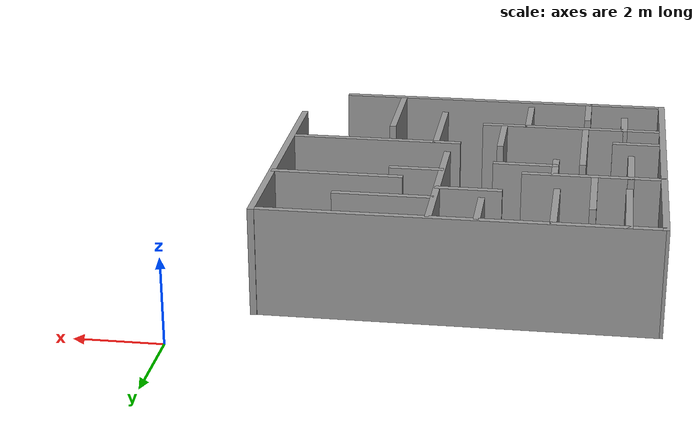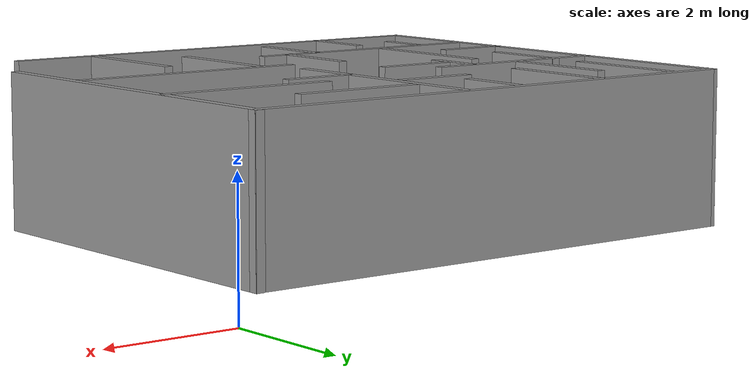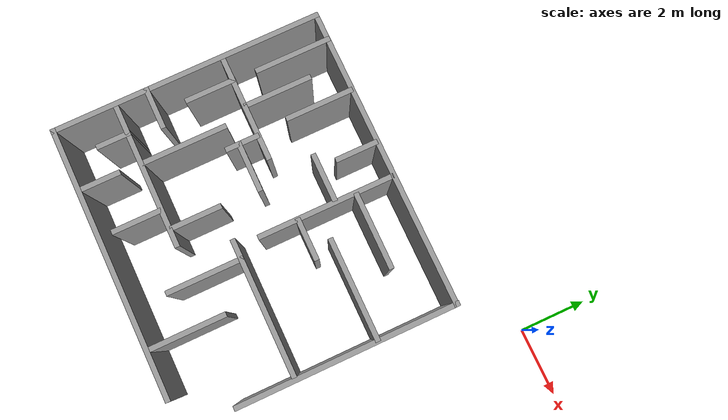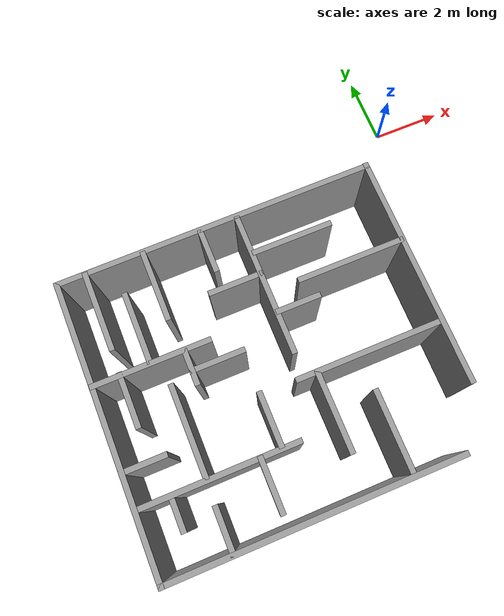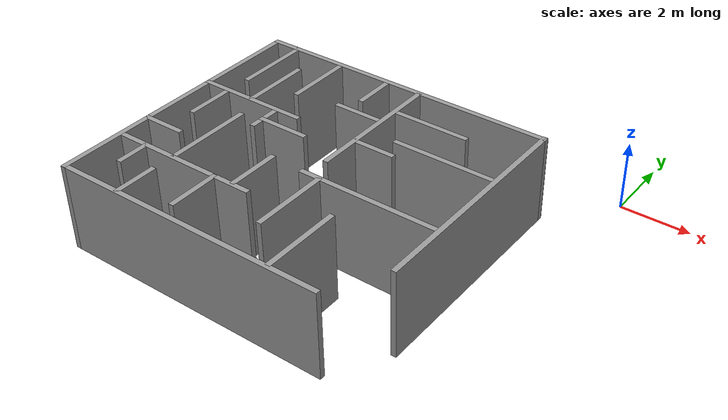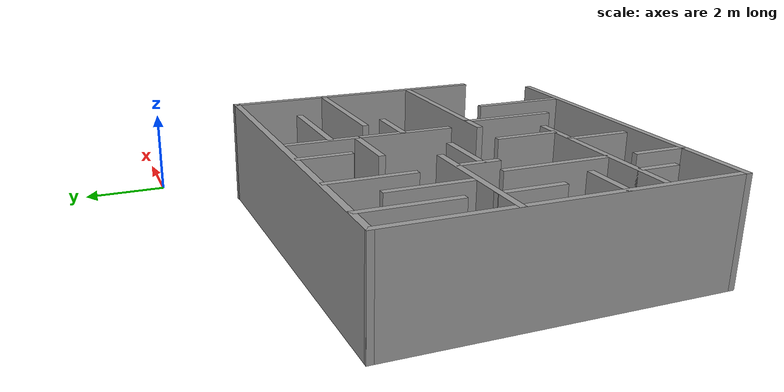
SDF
<?xml version='1.0'?>
<sdf version='1.7'>
  <model name='BushMaze2'>
    <pose>-5.21283 -4.8625 0 0 -0 0</pose>
    <link name='Wall_1'>
      <collision name='Wall_1_Collision'>
        <geometry>
          <box>
            <size>8 0.15 2.5</size>
          </box>
        </geometry>
        <pose>0 0 1.25 0 -0 0</pose>
      </collision>
      <visual name='Wall_1_Visual'>
        <pose>0 0 1.25 0 -0 0</pose>
        <geometry>
          <box>
            <size>8 0.15 2.5</size>
          </box>
        </geometry>
        <material>
          <script>
            <uri>file://media/materials/scripts/gazebo.material</uri>
            <name>Gazebo/Grey</name>
          </script>
          <ambient>1 1 1 1</ambient>
        </material>
        <meta>
          <layer>0</layer>
        </meta>
      </visual>
      <pose>-1.21217 -4.7875 0 0 -0 3.14159</pose>
    </link>
    <link name='Wall_11'>
      <collision name='Wall_11_Collision'>
        <geometry>
          <box>
            <size>2.25 0.15 2.5</size>
          </box>
        </geometry>
        <pose>0 0 1.25 0 -0 0</pose>
      </collision>
      <visual name='Wall_11_Visual'>
        <pose>0 0 1.25 0 -0 0</pose>
        <geometry>
          <box>
            <size>2.25 0.15 2.5</size>
          </box>
        </geometry>
        <material>
          <script>
            <uri>file://media/materials/scripts/gazebo.material</uri>
            <name>Gazebo/Grey</name>
          </script>
          <ambient>1 1 1 1</ambient>
        </material>
        <meta>
          <layer>0</layer>
        </meta>
      </visual>
      <pose>1.34379 -3.63478 0 0 -0 1.5708</pose>
    </link>
    <link name='Wall_13'>
      <collision name='Wall_13_Collision'>
        <geometry>
          <box>
            <size>4 0.15 2.5</size>
          </box>
        </geometry>
        <pose>0 0 1.25 0 -0 0</pose>
      </collision>
      <visual name='Wall_13_Visual'>
        <pose>0 0 1.25 0 -0 0</pose>
        <geometry>
          <box>
            <size>4 0.15 2.5</size>
          </box>
        </geometry>
        <material>
          <script>
            <uri>file://media/materials/scripts/gazebo.material</uri>
            <name>Gazebo/Grey</name>
          </script>
          <ambient>1 1 1 1</ambient>
        </material>
        <meta>
          <layer>0</layer>
        </meta>
      </visual>
      <pose>1.59936 -1.56717 0 0 -0 0</pose>
    </link>
    <link name='Wall_18'>
      <collision name='Wall_18_Collision'>
        <geometry>
          <box>
            <size>2.25 0.15 2.5</size>
          </box>
        </geometry>
        <pose>0 0 1.25 0 -0 0</pose>
      </collision>
      <visual name='Wall_18_Visual'>
        <pose>0 0 1.25 0 -0 0</pose>
        <geometry>
          <box>
            <size>2.25 0.15 2.5</size>
          </box>
        </geometry>
        <material>
          <script>
            <uri>file://media/materials/scripts/gazebo.material</uri>
            <name>Gazebo/Grey</name>
          </script>
          <ambient>1 1 1 1</ambient>
        </material>
        <meta>
          <layer>0</layer>
        </meta>
      </visual>
      <pose>0.185815 -2.62295 0 0 -0 -1.5708</pose>
    </link>
    <link name='Wall_22'>
      <collision name='Wall_22_Collision'>
        <geometry>
          <box>
            <size>4.25 0.15 2.5</size>
          </box>
        </geometry>
        <pose>0 0 1.25 0 -0 0</pose>
      </collision>
      <visual name='Wall_22_Visual'>
        <pose>0 0 1.25 0 -0 0</pose>
        <geometry>
          <box>
            <size>4.25 0.15 2.5</size>
          </box>
        </geometry>
        <material>
          <script>
            <uri>file://media/materials/scripts/gazebo.material</uri>
            <name>Gazebo/Grey</name>
          </script>
          <ambient>1 1 1 1</ambient>
        </material>
        <meta>
          <layer>0</layer>
        </meta>
      </visual>
      <pose>-2.94199 -2.97512 0 0 -0 0</pose>
    </link>
    <link name='Wall_24'>
      <collision name='Wall_24_Collision'>
        <geometry>
          <box>
            <size>1 0.15 2.5</size>
          </box>
        </geometry>
        <pose>0 0 1.25 0 -0 0</pose>
      </collision>
      <visual name='Wall_24_Visual'>
        <pose>0 0 1.25 0 -0 0</pose>
        <geometry>
          <box>
            <size>1 0.15 2.5</size>
          </box>
        </geometry>
        <material>
          <script>
            <uri>file://media/materials/scripts/gazebo.material</uri>
            <name>Gazebo/Grey</name>
          </script>
          <ambient>1 1 1 1</ambient>
        </material>
        <meta>
          <layer>0</layer>
        </meta>
      </visual>
      <pose>-4.22767 -3.40012 0 0 -0 -1.5708</pose>
    </link>
    <link name='Wall_27'>
      <collision name='Wall_27_Collision'>
        <geometry>
          <box>
            <size>1.25 0.15 2.5</size>
          </box>
        </geometry>
        <pose>0 0 1.25 0 -0 0</pose>
      </collision>
      <visual name='Wall_27_Visual'>
        <pose>0 0 1.25 0 -0 0</pose>
        <geometry>
          <box>
            <size>1.25 0.15 2.5</size>
          </box>
        </geometry>
        <material>
          <script>
            <uri>file://media/materials/scripts/gazebo.material</uri>
            <name>Gazebo/Grey</name>
          </script>
          <ambient>1 1 1 1</ambient>
        </material>
        <meta>
          <layer>0</layer>
        </meta>
      </visual>
      <pose>-3.33406 -4.19507 0 0 -0 1.5708</pose>
    </link>
    <link name='Wall_29'>
      <collision name='Wall_29_Collision'>
        <geometry>
          <box>
            <size>1.5 0.15 2.5</size>
          </box>
        </geometry>
        <pose>0 0 1.25 0 -0 0</pose>
      </collision>
      <visual name='Wall_29_Visual'>
        <pose>0 0 1.25 0 -0 0</pose>
        <geometry>
          <box>
            <size>1.5 0.15 2.5</size>
          </box>
        </geometry>
        <material>
          <script>
            <uri>file://media/materials/scripts/gazebo.material</uri>
            <name>Gazebo/Grey</name>
          </script>
          <ambient>1 1 1 1</ambient>
        </material>
        <meta>
          <layer>0</layer>
        </meta>
      </visual>
      <pose>-1.91461 -3.67028 0 0 -0 -1.5708</pose>
    </link>
    <link name='Wall_31'>
      <collision name='Wall_31_Collision'>
        <geometry>
          <box>
            <size>1.5 0.15 2.5</size>
          </box>
        </geometry>
        <pose>0 0 1.25 0 -0 0</pose>
      </collision>
      <visual name='Wall_31_Visual'>
        <pose>0 0 1.25 0 -0 0</pose>
        <geometry>
          <box>
            <size>1.5 0.15 2.5</size>
          </box>
        </geometry>
        <material>
          <script>
            <uri>file://media/materials/scripts/gazebo.material</uri>
            <name>Gazebo/Grey</name>
          </script>
          <ambient>1 1 1 1</ambient>
        </material>
        <meta>
          <layer>0</layer>
        </meta>
      </visual>
      <pose>-1.34442 -2.21402 0 0 -0 1.5708</pose>
    </link>
    <link name='Wall_34'>
      <collision name='Wall_34_Collision'>
        <geometry>
          <box>
            <size>2.25 0.15 2.5</size>
          </box>
        </geometry>
        <pose>0 0 1.25 0 -0 0</pose>
      </collision>
      <visual name='Wall_34_Visual'>
        <pose>0 0 1.25 0 -0 0</pose>
        <geometry>
          <box>
            <size>2.25 0.15 2.5</size>
          </box>
        </geometry>
        <material>
          <script>
            <uri>file://media/materials/scripts/gazebo.material</uri>
            <name>Gazebo/Grey</name>
          </script>
          <ambient>1 1 1 1</ambient>
        </material>
        <meta>
          <layer>0</layer>
        </meta>
      </visual>
      <pose>-4.37096 2.0076 0 0 -0 -1.5708</pose>
    </link>
    <link name='Wall_36'>
      <collision name='Wall_36_Collision'>
        <geometry>
          <box>
            <size>3.25 0.15 2.5</size>
          </box>
        </geometry>
        <pose>0 0 1.25 0 -0 0</pose>
      </collision>
      <visual name='Wall_36_Visual'>
        <pose>0 0 1.25 0 -0 0</pose>
        <geometry>
          <box>
            <size>3.25 0.15 2.5</size>
          </box>
        </geometry>
        <material>
          <script>
            <uri>file://media/materials/scripts/gazebo.material</uri>
            <name>Gazebo/Grey</name>
          </script>
          <ambient>1 1 1 1</ambient>
        </material>
        <meta>
          <layer>0</layer>
        </meta>
      </visual>
      <pose>-3.5814 0.213568 0 0 -0 0</pose>
    </link>
    <link name='Wall_38'>
      <collision name='Wall_38_Collision'>
        <geometry>
          <box>
            <size>2 0.15 2.5</size>
          </box>
        </geometry>
        <pose>0 0 1.25 0 -0 0</pose>
      </collision>
      <visual name='Wall_38_Visual'>
        <pose>0 0 1.25 0 -0 0</pose>
        <geometry>
          <box>
            <size>2 0.15 2.5</size>
          </box>
        </geometry>
        <material>
          <script>
            <uri>file://media/materials/scripts/gazebo.material</uri>
            <name>Gazebo/Grey</name>
          </script>
          <ambient>1 1 1 1</ambient>
        </material>
        <meta>
          <layer>0</layer>
        </meta>
      </visual>
      <pose>-3.59532 1.1994 0 0 -0 1.5708</pose>
    </link>
    <link name='Wall_40'>
      <collision name='Wall_40_Collision'>
        <geometry>
          <box>
            <size>2 0.15 2.5</size>
          </box>
        </geometry>
        <pose>0 0 1.25 0 -0 0</pose>
      </collision>
      <visual name='Wall_40_Visual'>
        <pose>0 0 1.25 0 -0 0</pose>
        <geometry>
          <box>
            <size>2 0.15 2.5</size>
          </box>
        </geometry>
        <material>
          <script>
            <uri>file://media/materials/scripts/gazebo.material</uri>
            <name>Gazebo/Grey</name>
          </script>
          <ambient>1 1 1 1</ambient>
        </material>
        <meta>
          <layer>0</layer>
        </meta>
      </visual>
      <pose>-2.78925 2.08698 0 0 -0 -1.5708</pose>
    </link>
    <link name='Wall_43'>
      <collision name='Wall_43_Collision'>
        <geometry>
          <box>
            <size>1 0.15 2.5</size>
          </box>
        </geometry>
        <pose>0 0 1.25 0 -0 0</pose>
      </collision>
      <visual name='Wall_43_Visual'>
        <pose>0 0 1.25 0 -0 0</pose>
        <geometry>
          <box>
            <size>1 0.15 2.5</size>
          </box>
        </geometry>
        <material>
          <script>
            <uri>file://media/materials/scripts/gazebo.material</uri>
            <name>Gazebo/Grey</name>
          </script>
          <ambient>1 1 1 1</ambient>
        </material>
        <meta>
          <layer>0</layer>
        </meta>
      </visual>
      <pose>-2.69183 -0.258112 0 0 -0 1.5708</pose>
    </link>
    <link name='Wall_45'>
      <collision name='Wall_45_Collision'>
        <geometry>
          <box>
            <size>1.5 0.15 2.5</size>
          </box>
        </geometry>
        <pose>0 0 1.25 0 -0 0</pose>
      </collision>
      <visual name='Wall_45_Visual'>
        <pose>0 0 1.25 0 -0 0</pose>
        <geometry>
          <box>
            <size>1.5 0.15 2.5</size>
          </box>
        </geometry>
        <material>
          <script>
            <uri>file://media/materials/scripts/gazebo.material</uri>
            <name>Gazebo/Grey</name>
          </script>
          <ambient>1 1 1 1</ambient>
        </material>
        <meta>
          <layer>0</layer>
        </meta>
      </visual>
      <pose>-4.40072 -0.45074 0 0 -0 -1.5708</pose>
    </link>
    <link name='Wall_47'>
      <collision name='Wall_47_Collision'>
        <geometry>
          <box>
            <size>2.5 0.15 2.5</size>
          </box>
        </geometry>
        <pose>0 0 1.25 0 -0 0</pose>
      </collision>
      <visual name='Wall_47_Visual'>
        <pose>0 0 1.25 0 -0 0</pose>
        <geometry>
          <box>
            <size>2.5 0.15 2.5</size>
          </box>
        </geometry>
        <material>
          <script>
            <uri>file://media/materials/scripts/gazebo.material</uri>
            <name>Gazebo/Grey</name>
          </script>
          <ambient>1 1 1 1</ambient>
        </material>
        <meta>
          <layer>0</layer>
        </meta>
      </visual>
      <pose>-3.30431 -1.70849 0 0 -0 1.5708</pose>
    </link>
    <link name='Wall_49'>
      <collision name='Wall_49_Collision'>
        <geometry>
          <box>
            <size>1.25 0.15 2.5</size>
          </box>
        </geometry>
        <pose>0 0 1.25 0 -0 0</pose>
      </collision>
      <visual name='Wall_49_Visual'>
        <pose>0 0 1.25 0 -0 0</pose>
        <geometry>
          <box>
            <size>1.25 0.15 2.5</size>
          </box>
        </geometry>
        <material>
          <script>
            <uri>file://media/materials/scripts/gazebo.material</uri>
            <name>Gazebo/Grey</name>
          </script>
          <ambient>1 1 1 1</ambient>
        </material>
        <meta>
          <layer>0</layer>
        </meta>
      </visual>
      <pose>-4.58418 -2.03661 0 0 -0 0</pose>
    </link>
    <link name='Wall_51'>
      <collision name='Wall_51_Collision'>
        <geometry>
          <box>
            <size>4 0.15 2.5</size>
          </box>
        </geometry>
        <pose>0 0 1.25 0 -0 0</pose>
      </collision>
      <visual name='Wall_51_Visual'>
        <pose>0 0 1.25 0 -0 0</pose>
        <geometry>
          <box>
            <size>4 0.15 2.5</size>
          </box>
        </geometry>
        <material>
          <script>
            <uri>file://media/materials/scripts/gazebo.material</uri>
            <name>Gazebo/Grey</name>
          </script>
          <ambient>1 1 1 1</ambient>
        </material>
        <meta>
          <layer>0</layer>
        </meta>
      </visual>
      <pose>-0.151392 1.06576 0 0 -0 -1.5708</pose>
    </link>
    <link name='Wall_53'>
      <collision name='Wall_53_Collision'>
        <geometry>
          <box>
            <size>1.5 0.15 2.5</size>
          </box>
        </geometry>
        <pose>0 0 1.25 0 -0 0</pose>
      </collision>
      <visual name='Wall_53_Visual'>
        <pose>0 0 1.25 0 -0 0</pose>
        <geometry>
          <box>
            <size>1.5 0.15 2.5</size>
          </box>
        </geometry>
        <material>
          <script>
            <uri>file://media/materials/scripts/gazebo.material</uri>
            <name>Gazebo/Grey</name>
          </script>
          <ambient>1 1 1 1</ambient>
        </material>
        <meta>
          <layer>0</layer>
        </meta>
      </visual>
      <pose>-0.852842 1.35086 0 0 -0 3.14159</pose>
    </link>
    <link name='Wall_55'>
      <collision name='Wall_55_Collision'>
        <geometry>
          <box>
            <size>1.25 0.15 2.5</size>
          </box>
        </geometry>
        <pose>0 0 1.25 0 -0 0</pose>
      </collision>
      <visual name='Wall_55_Visual'>
        <pose>0 0 1.25 0 -0 0</pose>
        <geometry>
          <box>
            <size>1.25 0.15 2.5</size>
          </box>
        </geometry>
        <material>
          <script>
            <uri>file://media/materials/scripts/gazebo.material</uri>
            <name>Gazebo/Grey</name>
          </script>
          <ambient>1 1 1 1</ambient>
        </material>
        <meta>
          <layer>0</layer>
        </meta>
      </visual>
      <pose>-1.18294 2.45398 0 0 -0 -1.5708</pose>
    </link>
    <link name='Wall_57'>
      <collision name='Wall_57_Collision'>
        <geometry>
          <box>
            <size>1.5 0.15 2.5</size>
          </box>
        </geometry>
        <pose>0 0 1.25 0 -0 0</pose>
      </collision>
      <visual name='Wall_57_Visual'>
        <pose>0 0 1.25 0 -0 0</pose>
        <geometry>
          <box>
            <size>1.5 0.15 2.5</size>
          </box>
        </geometry>
        <material>
          <script>
            <uri>file://media/materials/scripts/gazebo.material</uri>
            <name>Gazebo/Grey</name>
          </script>
          <ambient>1 1 1 1</ambient>
        </material>
        <meta>
          <layer>0</layer>
        </meta>
      </visual>
      <pose>-2.01559 -0.355167 0 0 -0 0</pose>
    </link>
    <link name='Wall_60'>
      <collision name='Wall_60_Collision'>
        <geometry>
          <box>
            <size>1.25 0.15 2.5</size>
          </box>
        </geometry>
        <pose>0 0 1.25 0 -0 0</pose>
      </collision>
      <visual name='Wall_60_Visual'>
        <pose>0 0 1.25 0 -0 0</pose>
        <geometry>
          <box>
            <size>1.25 0.15 2.5</size>
          </box>
        </geometry>
        <material>
          <script>
            <uri>file://media/materials/scripts/gazebo.material</uri>
            <name>Gazebo/Grey</name>
          </script>
          <ambient>1 1 1 1</ambient>
        </material>
        <meta>
          <layer>0</layer>
        </meta>
      </visual>
      <pose>0.438282 0.239957 0 0 -0 0</pose>
    </link>
    <link name='Wall_62'>
      <collision name='Wall_62_Collision'>
        <geometry>
          <box>
            <size>3 0.15 2.5</size>
          </box>
        </geometry>
        <pose>0 0 1.25 0 -0 0</pose>
      </collision>
      <visual name='Wall_62_Visual'>
        <pose>0 0 1.25 0 -0 0</pose>
        <geometry>
          <box>
            <size>3 0.15 2.5</size>
          </box>
        </geometry>
        <material>
          <script>
            <uri>file://media/materials/scripts/gazebo.material</uri>
            <name>Gazebo/Grey</name>
          </script>
          <ambient>1 1 1 1</ambient>
        </material>
        <meta>
          <layer>0</layer>
        </meta>
      </visual>
      <pose>2.17291 0.808632 0 0 -0 0</pose>
    </link>
    <link name='Wall_64'>
      <collision name='Wall_64_Collision'>
        <geometry>
          <box>
            <size>2.25 0.15 2.5</size>
          </box>
        </geometry>
        <pose>0 0 1.25 0 -0 0</pose>
      </collision>
      <visual name='Wall_64_Visual'>
        <pose>0 0 1.25 0 -0 0</pose>
        <geometry>
          <box>
            <size>2.25 0.15 2.5</size>
          </box>
        </geometry>
        <material>
          <script>
            <uri>file://media/materials/scripts/gazebo.material</uri>
            <name>Gazebo/Grey</name>
          </script>
          <ambient>1 1 1 1</ambient>
        </material>
        <meta>
          <layer>0</layer>
        </meta>
      </visual>
      <pose>0.977958 1.94598 0 0 -0 0</pose>
    </link>
    <link name='Wall_7'>
      <collision name='Wall_7_Collision'>
        <geometry>
          <box>
            <size>8 0.15 2.5</size>
          </box>
        </geometry>
        <pose>0 0 1.25 0 -0 0</pose>
      </collision>
      <visual name='Wall_7_Visual'>
        <pose>0 0 1.25 0 -0 0</pose>
        <geometry>
          <box>
            <size>8 0.15 2.5</size>
          </box>
        </geometry>
        <material>
          <script>
            <uri>file://media/materials/scripts/gazebo.material</uri>
            <name>Gazebo/Grey</name>
          </script>
          <ambient>1 1 1 1</ambient>
        </material>
        <meta>
          <layer>0</layer>
        </meta>
      </visual>
      <pose>-5.13717 -0.8625 0 0 -0 1.5708</pose>
    </link>
    <link name='Wall_8'>
      <collision name='Wall_8_Collision'>
        <geometry>
          <box>
            <size>8.94378 0.15 2.5</size>
          </box>
        </geometry>
        <pose>0 0 1.25 0 -0 0</pose>
      </collision>
      <visual name='Wall_8_Visual'>
        <pose>0 0 1.25 0 -0 0</pose>
        <geometry>
          <box>
            <size>8.94378 0.15 2.5</size>
          </box>
        </geometry>
        <material>
          <script>
            <uri>file://media/materials/scripts/gazebo.material</uri>
            <name>Gazebo/Grey</name>
          </script>
          <ambient>1 1 1 1</ambient>
        </material>
        <meta>
          <layer>0</layer>
        </meta>
      </visual>
      <pose>-0.740702 3.07771 0 0 -0 0.003459</pose>
    </link>
    <link name='Wall_9'>
      <collision name='Wall_9_Collision'>
        <geometry>
          <box>
            <size>6.5 0.15 2.5</size>
          </box>
        </geometry>
        <pose>0 0 1.25 0 -0 0</pose>
      </collision>
      <visual name='Wall_9_Visual'>
        <pose>0 0 1.25 0 -0 0</pose>
        <geometry>
          <box>
            <size>6.5 0.15 2.5</size>
          </box>
        </geometry>
        <material>
          <script>
            <uri>file://media/materials/scripts/gazebo.material</uri>
            <name>Gazebo/Grey</name>
          </script>
          <ambient>1 1 1 1</ambient>
        </material>
        <meta>
          <layer>0</layer>
        </meta>
      </visual>
      <pose>3.65577 -0.066874 0 0 -0 -1.5708</pose>
    </link>
    <static>1</static>
  </model>
</sdf>
